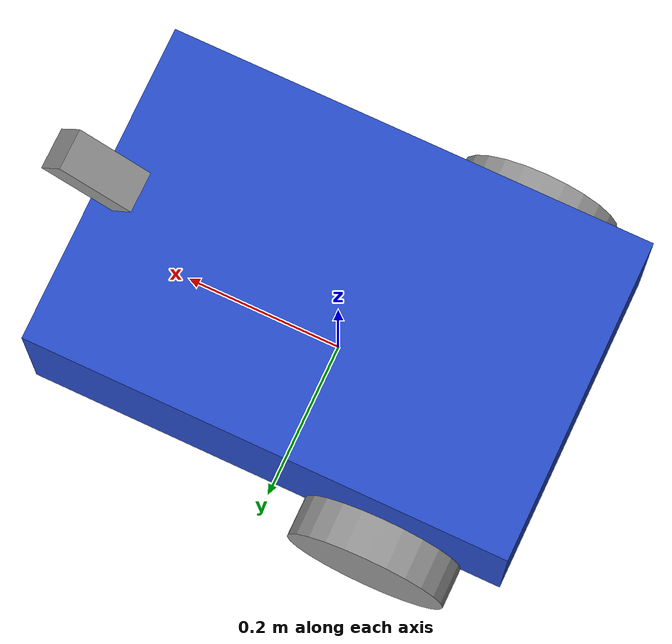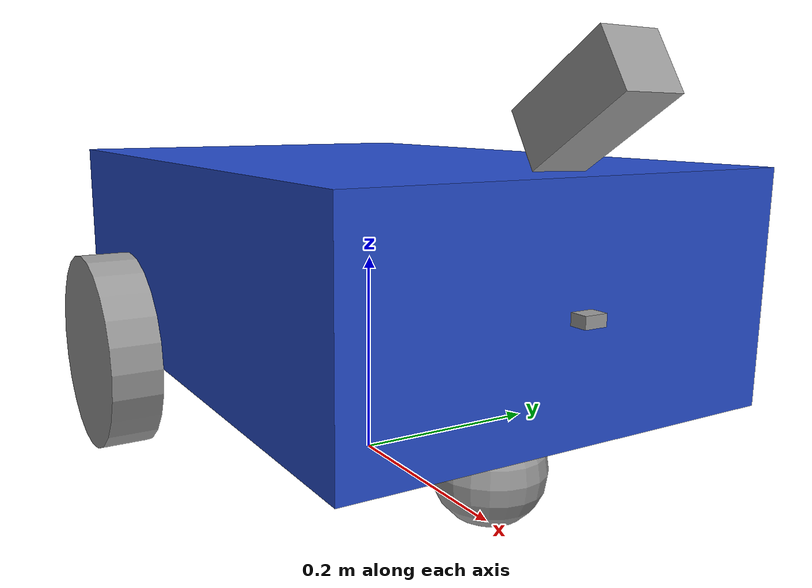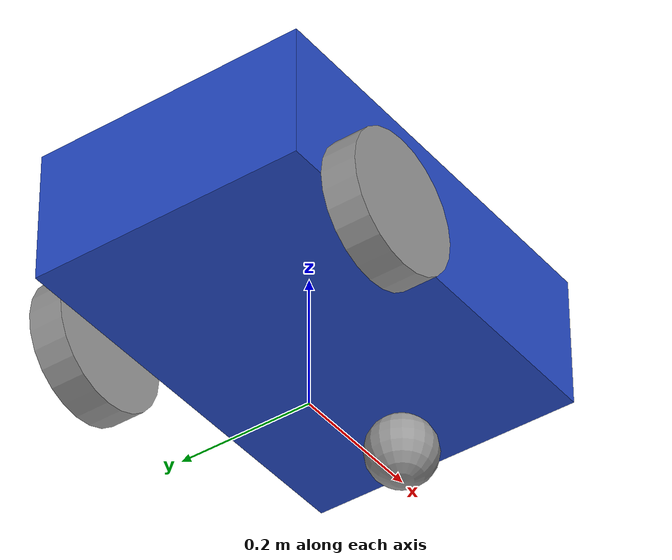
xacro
<?xml version="1.0"?>
<robot xmlns:xacro="http://www.ros.org/wiki/xacro">

    <xacro:property name="base_length" value="0.6" />
    <xacro:property name="base_width" value="0.4" />
    <xacro:property name="base_height" value="0.2" />
    <xacro:property name="wheel_radius" value="0.1" />
    <xacro:property name="wheel_length" value="0.05" />

    <link name="base_footprint" />

    <link name="base_link">
        <visual>
            <geometry>
                <box size="${base_length} ${base_width} ${base_height}" />
            </geometry>
            <origin xyz="0 0 ${base_height / 2.0}" rpy="0 0 0" />
            <material name="blue" />
        </visual>
        <collision>
            <geometry>
                <box size="${base_length} ${base_width} ${base_height}" />
            </geometry>
            <origin xyz="0 0 ${base_height / 2.0}" rpy="0 0 0" />
        </collision>
        <xacro:box_inertia m="5.0" l="${2*base_length}" w="${2*base_width}" h="${2*base_height}"
                           xyz="0 0 ${base_height / 2.0}" rpy="0 0 0" />
    </link>

    <xacro:macro name="wheel_link" params="prefix">
        <link name="${prefix}_wheel_link">
            <visual>
                <geometry>
                    <cylinder radius="${wheel_radius}" length="${wheel_length}" />
                </geometry>
                <origin xyz="0 0 0" rpy="${pi / 2.0} 0 0" />
                <material name="grey" />
            </visual>
            <collision>
                <geometry>
                    <cylinder radius="${wheel_radius}" length="${wheel_length}" />
                </geometry>
                <origin xyz="0 0 0" rpy="${pi / 2.0} 0 0" />
            </collision>
            <xacro:cylinder_inertia m="1.0" r="${2*wheel_radius}" h="${2*wheel_length}"
                                    xyz="0 0 0" rpy="${pi / 2.0} 0 0" />
        </link>
    </xacro:macro>

    <xacro:wheel_link prefix="right" />
    <xacro:wheel_link prefix="left" />

<!-- //////////////////////////////////// Caster_wheel_link //////////////////////////////////////////////// -->

    <link name="caster_wheel_link">
        <visual>
            <geometry>
                <sphere radius="${wheel_radius / 2.0}" />
            </geometry>
            <origin xyz="0 0 0" rpy="0 0 0" />
            <material name="grey" />
        </visual>

        <collision>
            <geometry>
                <sphere radius="${wheel_radius / 2.0}" />
            </geometry>
            <origin xyz="0 0 0" rpy="0 0 0" />
        </collision>

        <xacro:sphere_inertia m="0.5" r="${2*wheel_radius / 2.0}"
                              xyz="0 0 0" rpy="0 0 0" />
    </link>
<!-- ////////////////////////////////////  Camera Link //////////////////////////////////////////////// -->

     <link name="camera_link">
    <visual>
      <origin xyz="0.0 0.0 0.0" rpy="0.0 0.0 -1.60"/>
      <geometry>
        <box size="0.05 0.05 0.1" />
      </geometry>
      <material name="grey" />
    </visual>

    <collision>
      <geometry>
        <box size="0.1 0.1 0.1" />
      </geometry>
    </collision>

    <inertial>
      <mass value="0.75" />
      <inertia ixx="0.0001295" iyy="0.0001295" izz="0.000199322" ixy="0.0" ixz="0.0" iyz="0.0" />
      <origin />
    </inertial>

  </link>

<!-- ////////////////////////////////////  Laser Link //////////////////////////////////////////////// -->

     <link name="laser_link">
    <visual>
      <origin xyz="0.0 0.0 0.0" rpy="0.0 0.0 -1.60"/>
      <geometry>
        <box size="0.02 0.02 0.01" />
      </geometry>
      <material name="grey" />
    </visual>

    <collision>
      <geometry>
        <box size="0.02 0.02 0.01" />
      </geometry>
    </collision>

    <inertial>
      <mass value="0.75" />
      <inertia ixx="0.0001295" iyy="0.0001295" izz="0.000199322" ixy="0.0" ixz="0.0" iyz="0.0" />
      <origin />
    </inertial>

  </link>

<!-- ////////////////////////////////////  Joints ////////////////////////////////////////////////  -->

  <joint name="camera_joint" type="fixed">
    <parent link="base_link" />
    <child link="camera_link" />
    <origin xyz="0.3 0.0 0.25" rpy="0 1.0 0" />
  </joint>

<joint name="laser_joint" type="fixed">
    <parent link="base_link" />
    <child link="laser_link" />
    <origin xyz="0.305 0.0 0.1" rpy="0 0.0 -1.55" />
  </joint>

    <joint name="base_joint" type="fixed">
        <parent link="base_footprint" />
        <child link="base_link" />
        <origin xyz="0 0 ${wheel_radius}" rpy="0 0 0"/>
    </joint>

    <joint name="base_right_wheel_joint" type="continuous">
        <parent link="base_link" />
        <child link="right_wheel_link" />
        <origin xyz="${-base_length / 4.0} ${-(base_width + wheel_length) / 2.0} 0" rpy="0 0 0" />
        <axis xyz="0 1 0" />
    </joint>

    <joint name="base_left_wheel_joint" type="continuous">
        <parent link="base_link" />
        <child link="left_wheel_link" />
        <origin xyz="${-base_length / 4.0} ${(base_width + wheel_length) / 2.0} 0" rpy="0 0 0" />
        <axis xyz="0 1 0" />
    </joint>

    <joint name="base_caster_wheel_joint" type="fixed">
        <parent link="base_link" />
        <child link="caster_wheel_link" />
        <origin xyz="${base_length / 3.0} 0 ${-wheel_radius / 2.0}" rpy="0 0 0" />
    </joint>

</robot>
